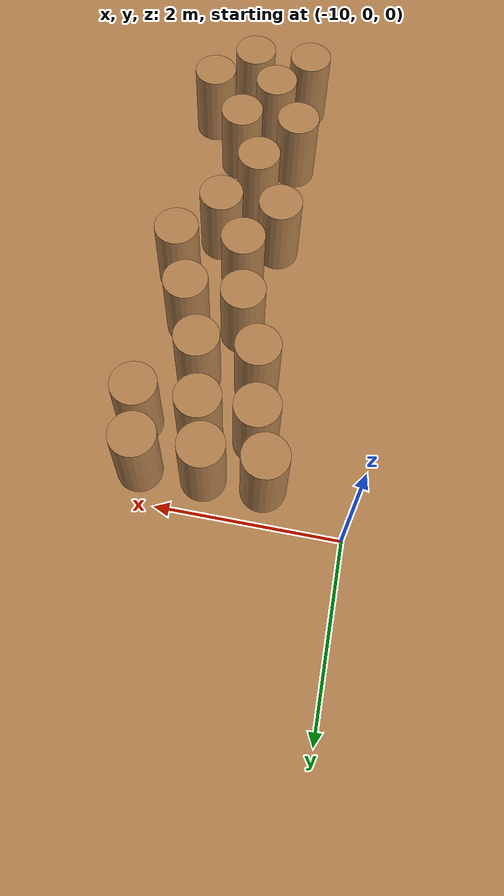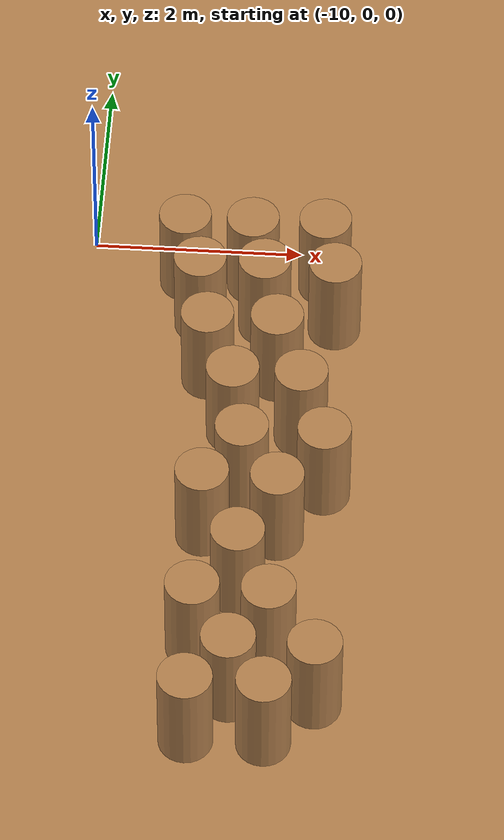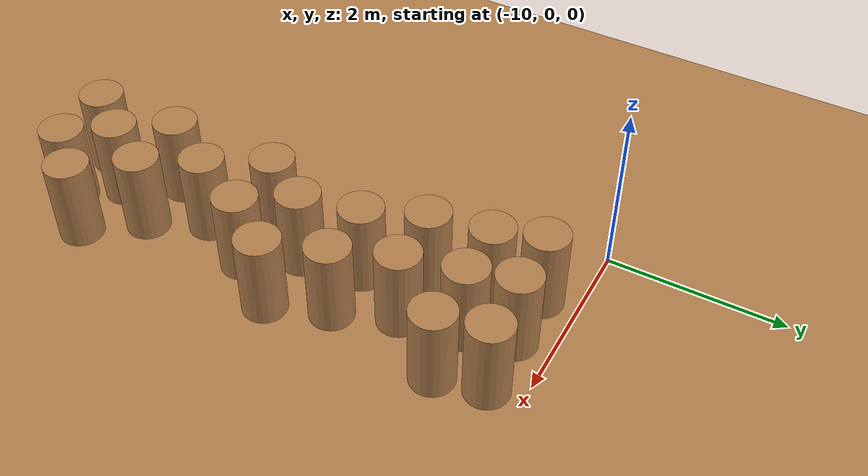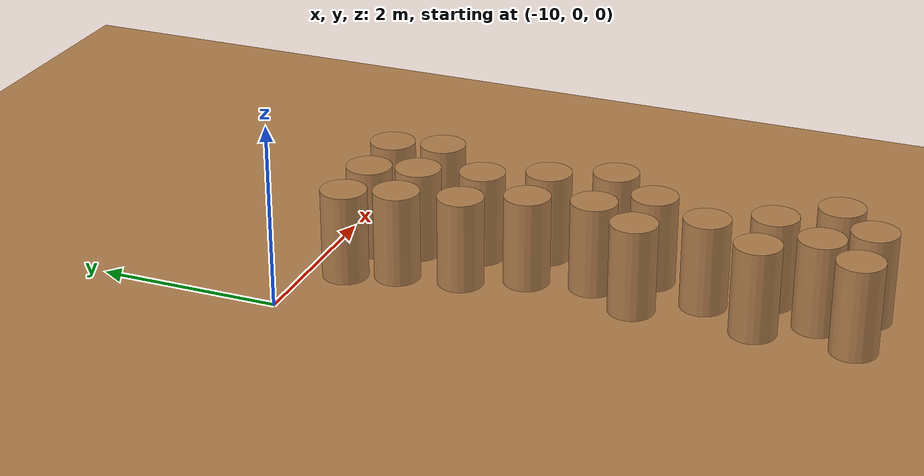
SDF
<sdf version="1.6">
 <world name="default">
  <model name="ground_plane">
   <pose>1.25 -2.75 0 0 -0 0</pose>
   <static>1</static>
   <link name="link">
    <collision name="collision">
     <geometry><plane><normal>0 0 1</normal><size>100 100</size></plane></geometry>
     <surface><friction><ode><mu>100</mu><mu2>50</mu2></ode></friction></surface>
    </collision>
    <visual name="visual">
     <cast_shadows>0</cast_shadows>
     <geometry><plane><normal>0 0 1</normal><size>32 34.75</size></plane></geometry>
     <material>
      <script><uri>file://media/materials/scripts/gazebo.material</uri><name>Gazebo/WoodFloor</name></script>
     </material>
    </visual>
   </link>
  </model>
  <model name="unit_cylinder_11_clone_3">
   <pose>-8.75315 -4.74749 0.499992 1e-06 -1e-06 -1e-05</pose>
   <link name="link">
    <inertial>
     <mass>1</mass>
     <inertia><ixx>0.145833</ixx><ixy>0</ixy><ixz>0</ixz><iyy>0.145833</iyy><iyz>0</iyz><izz>0.125</izz></inertia>
    </inertial>
    <collision name="collision">
     <geometry><cylinder><radius>0.25</radius><length>1</length></cylinder></geometry>
    </collision>
    <visual name="visual">
     <geometry><cylinder><radius>0.25</radius><length>1</length></cylinder></geometry>
     <material>
      <script><name>Gazebo/Wood</name><uri>file://media/materials/scripts/gazebo.material</uri></script>
     </material>
    </visual>
   </link>
  </model>
  <model name="unit_cylinder_11_clone_4">
   <pose>-8.0633 -4.75104 0.499998 -1e-06 1e-06 -1e-05</pose>
   <link name="link">
    <inertial>
     <mass>1</mass>
     <inertia><ixx>0.145833</ixx><ixy>0</ixy><ixz>0</ixz><iyy>0.145833</iyy><iyz>0</iyz><izz>0.125</izz></inertia>
    </inertial>
    <collision name="collision">
     <geometry><cylinder><radius>0.25</radius><length>1</length></cylinder></geometry>
    </collision>
    <visual name="visual">
     <geometry><cylinder><radius>0.25</radius><length>1</length></cylinder></geometry>
     <material>
      <script><name>Gazebo/Wood</name><uri>file://media/materials/scripts/gazebo.material</uri></script>
     </material>
    </visual>
   </link>
  </model>
  <model name="unit_cylinder_11_clone_9">
   <pose>-8.38094 -4.12333 0.499992 1e-06 -0 -9e-06</pose>
   <link name="link">
    <inertial>
     <mass>1</mass>
     <inertia><ixx>0.145833</ixx><ixy>0</ixy><ixz>0</ixz><iyy>0.145833</iyy><iyz>0</iyz><izz>0.125</izz></inertia>
    </inertial>
    <collision name="collision">
     <geometry><cylinder><radius>0.25</radius><length>1</length></cylinder></geometry>
    </collision>
    <visual name="visual">
     <geometry><cylinder><radius>0.25</radius><length>1</length></cylinder></geometry>
     <material>
      <script><name>Gazebo/Wood</name><uri>file://media/materials/scripts/gazebo.material</uri></script>
     </material>
    </visual>
   </link>
  </model>
  <model name="unit_cylinder_11_clone_15">
   <pose>-8.74756 -3.46229 0.499998 -1e-06 1e-06 -8e-06</pose>
   <link name="link">
    <inertial>
     <mass>1</mass>
     <inertia><ixx>0.145833</ixx><ixy>0</ixy><ixz>0</ixz><iyy>0.145833</iyy><iyz>0</iyz><izz>0.125</izz></inertia>
    </inertial>
    <collision name="collision">
     <geometry><cylinder><radius>0.25</radius><length>1</length></cylinder></geometry>
    </collision>
    <visual name="visual">
     <geometry><cylinder><radius>0.25</radius><length>1</length></cylinder></geometry>
     <material>
      <script><name>Gazebo/Wood</name><uri>file://media/materials/scripts/gazebo.material</uri></script>
     </material>
    </visual>
   </link>
  </model>
  <model name="unit_cylinder_11_clone_16">
   <pose>-8.0565 -3.46937 0.499998 -1e-06 -0 -8e-06</pose>
   <link name="link">
    <inertial>
     <mass>1</mass>
     <inertia><ixx>0.145833</ixx><ixy>0</ixy><ixz>0</ixz><iyy>0.145833</iyy><iyz>0</iyz><izz>0.125</izz></inertia>
    </inertial>
    <collision name="collision">
     <geometry><cylinder><radius>0.25</radius><length>1</length></cylinder></geometry>
    </collision>
    <visual name="visual">
     <geometry><cylinder><radius>0.25</radius><length>1</length></cylinder></geometry>
     <material>
      <script><name>Gazebo/Wood</name><uri>file://media/materials/scripts/gazebo.material</uri></script>
     </material>
    </visual>
   </link>
  </model>
  <model name="unit_cylinder_11_clone_22">
   <pose>-8.4134 -2.92464 0.499998 -1e-06 1e-06 -7e-06</pose>
   <link name="link">
    <inertial>
     <mass>1</mass>
     <inertia><ixx>0.145833</ixx><ixy>0</ixy><ixz>0</ixz><iyy>0.145833</iyy><iyz>0</iyz><izz>0.125</izz></inertia>
    </inertial>
    <collision name="collision">
     <geometry><cylinder><radius>0.25</radius><length>1</length></cylinder></geometry>
    </collision>
    <visual name="visual">
     <geometry><cylinder><radius>0.25</radius><length>1</length></cylinder></geometry>
     <material>
      <script><name>Gazebo/Wood</name><uri>file://media/materials/scripts/gazebo.material</uri></script>
     </material>
    </visual>
   </link>
  </model>
  <model name="unit_cylinder_11_clone_23">
   <pose>-7.65155 -2.91686 0.499998 -1e-06 1e-06 -7e-06</pose>
   <link name="link">
    <inertial>
     <mass>1</mass>
     <inertia><ixx>0.145833</ixx><ixy>0</ixy><ixz>0</ixz><iyy>0.145833</iyy><iyz>0</iyz><izz>0.125</izz></inertia>
    </inertial>
    <collision name="collision">
     <geometry><cylinder><radius>0.25</radius><length>1</length></cylinder></geometry>
    </collision>
    <visual name="visual">
     <geometry><cylinder><radius>0.25</radius><length>1</length></cylinder></geometry>
     <material>
      <script><name>Gazebo/Wood</name><uri>file://media/materials/scripts/gazebo.material</uri></script>
     </material>
    </visual>
   </link>
  </model>
  <model name="unit_cylinder_11_clone_29">
   <pose>-8.54009 -2.23769 0.499992 1e-06 -0 -6e-06</pose>
   <link name="link">
    <inertial>
     <mass>1</mass>
     <inertia><ixx>0.145833</ixx><ixy>0</ixy><ixz>0</ixz><iyy>0.145833</iyy><iyz>0</iyz><izz>0.125</izz></inertia>
    </inertial>
    <collision name="collision">
     <geometry><cylinder><radius>0.25</radius><length>1</length></cylinder></geometry>
    </collision>
    <visual name="visual">
     <geometry><cylinder><radius>0.25</radius><length>1</length></cylinder></geometry>
     <material>
      <script><name>Gazebo/Wood</name><uri>file://media/materials/scripts/gazebo.material</uri></script>
     </material>
    </visual>
   </link>
  </model>
  <model name="unit_cylinder_11_clone_30">
   <pose>-7.89911 -2.2464 0.499998 -1e-06 -0 -6e-06</pose>
   <link name="link">
    <inertial>
     <mass>1</mass>
     <inertia><ixx>0.145833</ixx><ixy>0</ixy><ixz>0</ixz><iyy>0.145833</iyy><iyz>0</iyz><izz>0.125</izz></inertia>
    </inertial>
    <collision name="collision">
     <geometry><cylinder><radius>0.25</radius><length>1</length></cylinder></geometry>
    </collision>
    <visual name="visual">
     <geometry><cylinder><radius>0.25</radius><length>1</length></cylinder></geometry>
     <material>
      <script><name>Gazebo/Wood</name><uri>file://media/materials/scripts/gazebo.material</uri></script>
     </material>
    </visual>
   </link>
  </model>
  <model name="unit_cylinder_11_clone_35">
   <pose>-8.81606 -1.60062 0.499998 -1e-06 1e-06 -5e-06</pose>
   <link name="link">
    <inertial>
     <mass>1</mass>
     <inertia><ixx>0.145833</ixx><ixy>0</ixy><ixz>0</ixz><iyy>0.145833</iyy><iyz>0</iyz><izz>0.125</izz></inertia>
    </inertial>
    <collision name="collision">
     <geometry><cylinder><radius>0.25</radius><length>1</length></cylinder></geometry>
    </collision>
    <visual name="visual">
     <geometry><cylinder><radius>0.25</radius><length>1</length></cylinder></geometry>
     <material>
      <script><name>Gazebo/Wood</name><uri>file://media/materials/scripts/gazebo.material</uri></script>
     </material>
    </visual>
   </link>
  </model>
  <model name="unit_cylinder_11_clone_36">
   <pose>-8.15976 -1.58774 0.499992 1e-06 -0 -5e-06</pose>
   <link name="link">
    <inertial>
     <mass>1</mass>
     <inertia><ixx>0.145833</ixx><ixy>0</ixy><ixz>0</ixz><iyy>0.145833</iyy><iyz>0</iyz><izz>0.125</izz></inertia>
    </inertial>
    <collision name="collision">
     <geometry><cylinder><radius>0.25</radius><length>1</length></cylinder></geometry>
    </collision>
    <visual name="visual">
     <geometry><cylinder><radius>0.25</radius><length>1</length></cylinder></geometry>
     <material>
      <script><name>Gazebo/Wood</name><uri>file://media/materials/scripts/gazebo.material</uri></script>
     </material>
    </visual>
   </link>
  </model>
  <model name="unit_cylinder_11_clone_42">
   <pose>-8.92784 -0.922037 0.499998 -1e-06 -0 -4e-06</pose>
   <link name="link">
    <inertial>
     <mass>1</mass>
     <inertia><ixx>0.145833</ixx><ixy>0</ixy><ixz>0</ixz><iyy>0.145833</iyy><iyz>0</iyz><izz>0.125</izz></inertia>
    </inertial>
    <collision name="collision">
     <geometry><cylinder><radius>0.25</radius><length>1</length></cylinder></geometry>
    </collision>
    <visual name="visual">
     <geometry><cylinder><radius>0.25</radius><length>1</length></cylinder></geometry>
     <material>
      <script><name>Gazebo/Wood</name><uri>file://media/materials/scripts/gazebo.material</uri></script>
     </material>
    </visual>
   </link>
  </model>
  <model name="unit_cylinder_11_clone_43">
   <pose>-8.3136 -0.911074 0.499998 -1e-06 1e-06 -4e-06</pose>
   <link name="link">
    <inertial>
     <mass>1</mass>
     <inertia><ixx>0.145833</ixx><ixy>0</ixy><ixz>0</ixz><iyy>0.145833</iyy><iyz>0</iyz><izz>0.125</izz></inertia>
    </inertial>
    <collision name="collision">
     <geometry><cylinder><radius>0.25</radius><length>1</length></cylinder></geometry>
    </collision>
    <visual name="visual">
     <geometry><cylinder><radius>0.25</radius><length>1</length></cylinder></geometry>
     <material>
      <script><name>Gazebo/Wood</name><uri>file://media/materials/scripts/gazebo.material</uri></script>
     </material>
    </visual>
   </link>
  </model>
  <model name="unit_cylinder_11_clone_44">
   <pose>-7.64404 -0.922584 0.499992 1e-06 -1e-06 -4e-06</pose>
   <link name="link">
    <inertial>
     <mass>1</mass>
     <inertia><ixx>0.145833</ixx><ixy>0</ixy><ixz>0</ixz><iyy>0.145833</iyy><iyz>0</iyz><izz>0.125</izz></inertia>
    </inertial>
    <collision name="collision">
     <geometry><cylinder><radius>0.25</radius><length>1</length></cylinder></geometry>
    </collision>
    <visual name="visual">
     <geometry><cylinder><radius>0.25</radius><length>1</length></cylinder></geometry>
     <material>
      <script><name>Gazebo/Wood</name><uri>file://media/materials/scripts/gazebo.material</uri></script>
     </material>
    </visual>
   </link>
  </model>
  <model name="unit_cylinder_11_clone_49">
   <pose>-9.10214 -0.399735 0.499992 1e-06 -1e-06 -3e-06</pose>
   <link name="link">
    <inertial>
     <mass>1</mass>
     <inertia><ixx>0.145833</ixx><ixy>0</ixy><ixz>0</ixz><iyy>0.145833</iyy><iyz>0</iyz><izz>0.125</izz></inertia>
    </inertial>
    <collision name="collision">
     <geometry><cylinder><radius>0.25</radius><length>1</length></cylinder></geometry>
    </collision>
    <visual name="visual">
     <geometry><cylinder><radius>0.25</radius><length>1</length></cylinder></geometry>
     <material>
      <script><name>Gazebo/Wood</name><uri>file://media/materials/scripts/gazebo.material</uri></script>
     </material>
    </visual>
   </link>
  </model>
  <model name="unit_cylinder_11_clone_50">
   <pose>-8.45357 -0.399524 0.499992 1e-06 -0 -3e-06</pose>
   <link name="link">
    <inertial>
     <mass>1</mass>
     <inertia><ixx>0.145833</ixx><ixy>0</ixy><ixz>0</ixz><iyy>0.145833</iyy><iyz>0</iyz><izz>0.125</izz></inertia>
    </inertial>
    <collision name="collision">
     <geometry><cylinder><radius>0.25</radius><length>1</length></cylinder></geometry>
    </collision>
    <visual name="visual">
     <geometry><cylinder><radius>0.25</radius><length>1</length></cylinder></geometry>
     <material>
      <script><name>Gazebo/Wood</name><uri>file://media/materials/scripts/gazebo.material</uri></script>
     </material>
    </visual>
   </link>
  </model>
  <model name="unit_cylinder_11_clone_51">
   <pose>-7.76427 -0.377358 0.499998 -1e-06 1e-06 -3e-06</pose>
   <link name="link">
    <inertial>
     <mass>1</mass>
     <inertia><ixx>0.145833</ixx><ixy>0</ixy><ixz>0</ixz><iyy>0.145833</iyy><iyz>0</iyz><izz>0.125</izz></inertia>
    </inertial>
    <collision name="collision">
     <geometry><cylinder><radius>0.25</radius><length>1</length></cylinder></geometry>
    </collision>
    <visual name="visual">
     <geometry><cylinder><radius>0.25</radius><length>1</length></cylinder></geometry>
     <material>
      <script><name>Gazebo/Wood</name><uri>file://media/materials/scripts/gazebo.material</uri></script>
     </material>
    </visual>
   </link>
  </model>
  <model name="unit_cylinder_11_clone_clone_3">
   <pose>-8.39412 -5.31046 0.5 1e-06 -1e-06 -9e-06</pose>
   <link name="link">
    <inertial>
     <mass>1</mass>
     <inertia><ixx>0.145833</ixx><ixy>0</ixy><ixz>0</ixz><iyy>0.145833</iyy><iyz>0</iyz><izz>0.125</izz></inertia>
    </inertial>
    <collision name="collision">
     <geometry><cylinder><radius>0.25</radius><length>1</length></cylinder></geometry>
    </collision>
    <visual name="visual">
     <geometry><cylinder><radius>0.25</radius><length>1</length></cylinder></geometry>
     <material>
      <script><name>Gazebo/Wood</name><uri>file://media/materials/scripts/gazebo.material</uri></script>
     </material>
    </visual>
   </link>
  </model>
  <model name="unit_cylinder_11_clone_clone_4">
   <pose>-7.61893 -5.33763 0.499992 -1e-06 1e-06 -8e-06</pose>
   <link name="link">
    <inertial>
     <mass>1</mass>
     <inertia><ixx>0.145833</ixx><ixy>0</ixy><ixz>0</ixz><iyy>0.145833</iyy><iyz>0</iyz><izz>0.125</izz></inertia>
    </inertial>
    <collision name="collision">
     <geometry><cylinder><radius>0.25</radius><length>1</length></cylinder></geometry>
    </collision>
    <visual name="visual">
     <geometry><cylinder><radius>0.25</radius><length>1</length></cylinder></geometry>
     <material>
      <script><name>Gazebo/Wood</name><uri>file://media/materials/scripts/gazebo.material</uri></script>
     </material>
    </visual>
   </link>
  </model>
  <model name="unit_cylinder_11_clone_clone_9">
   <pose>-8.74971 -5.77348 0.499991 0 -0 0.007476</pose>
   <link name="link">
    <inertial>
     <mass>1</mass>
     <inertia><ixx>0.145833</ixx><ixy>0</ixy><ixz>0</ixz><iyy>0.145833</iyy><iyz>0</iyz><izz>0.125</izz></inertia>
    </inertial>
    <collision name="collision">
     <geometry><cylinder><radius>0.25</radius><length>1</length></cylinder></geometry>
    </collision>
    <visual name="visual">
     <geometry><cylinder><radius>0.25</radius><length>1</length></cylinder></geometry>
     <material>
      <script><name>Gazebo/Wood</name><uri>file://media/materials/scripts/gazebo.material</uri></script>
     </material>
    </visual>
   </link>
  </model>
  <model name="unit_cylinder_11_clone_clone_10">
   <pose>-8.05189 -5.76838 0.49999 0 -1e-06 -8e-06</pose>
   <link name="link">
    <inertial>
     <mass>1</mass>
     <inertia><ixx>0.145833</ixx><ixy>0</ixy><ixz>0</ixz><iyy>0.145833</iyy><iyz>0</iyz><izz>0.125</izz></inertia>
    </inertial>
    <collision name="collision">
     <geometry><cylinder><radius>0.25</radius><length>1</length></cylinder></geometry>
    </collision>
    <visual name="visual">
     <geometry><cylinder><radius>0.25</radius><length>1</length></cylinder></geometry>
     <material>
      <script><name>Gazebo/Wood</name><uri>file://media/materials/scripts/gazebo.material</uri></script>
     </material>
    </visual>
   </link>
  </model>
 </world>
</sdf>
